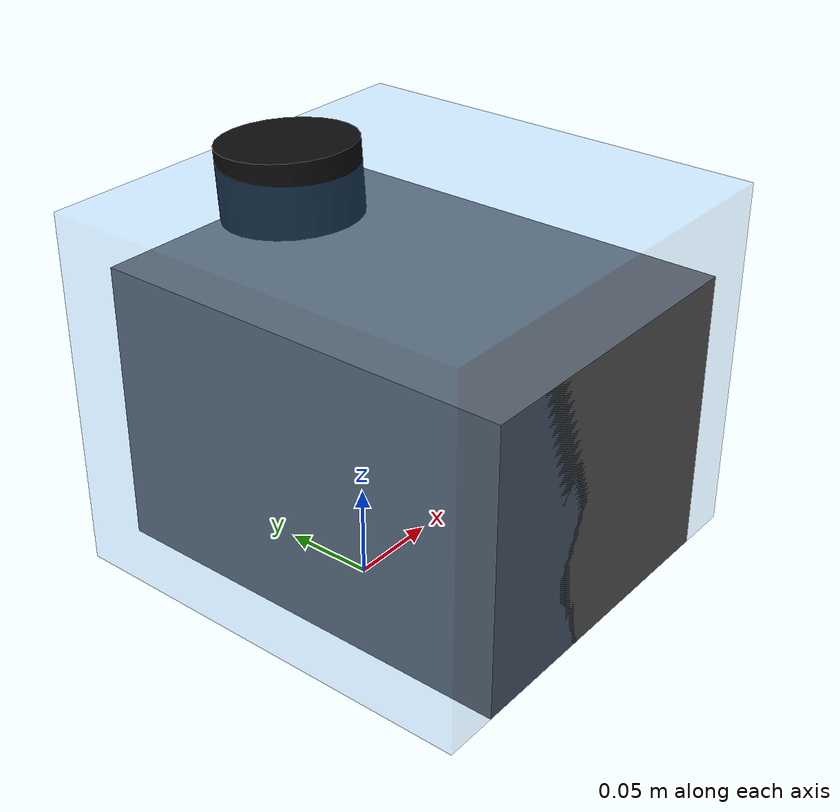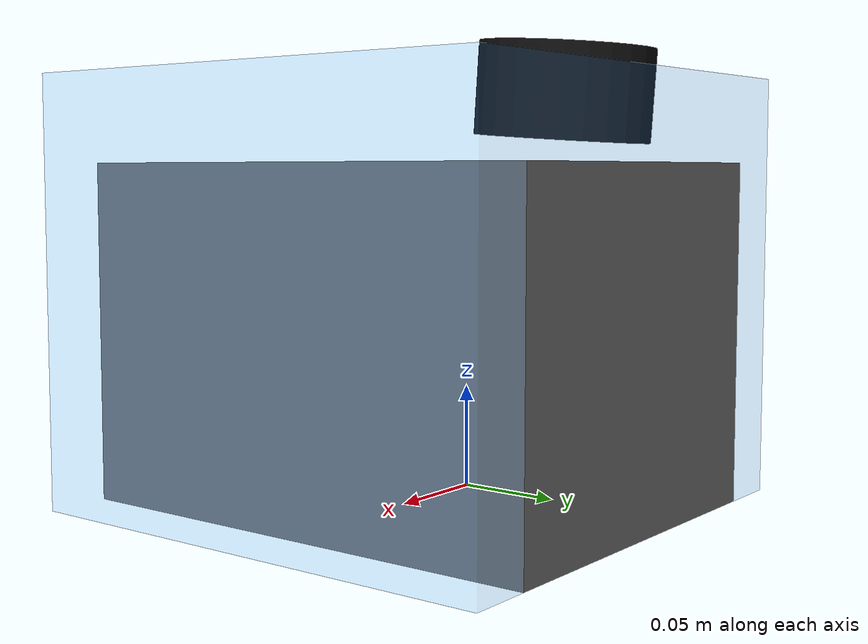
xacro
<?xml version="1.0"?>
<robot name="example_robot" xmlns:xacro="http://www.ros.org/wiki/xacro">

<link name="base_link">
    <visual name="base">
      <origin xyz="0.04 0 0.08" rpy="0 0 0"/>
      <geometry>
        <box size="0.18 0.24 0.16"/>
      </geometry>
      <material name="grey">
        <color rgba="0.4 0.4 0.4 1.0"/>
      </material>
    </visual>
    <visual name="bounding_cube">
      <origin xyz="0.04 0 0.10" rpy="0 0 0"/>
      <geometry>
        <box size="0.24 0.24 0.20"/>
      </geometry>
      <material name="ghost_cube">
        <color rgba="0.2 0.6 1.0 0.12"/>
      </material>
    </visual>
    <collision>
      <origin xyz="0.04 0 0.08" rpy="0 0 0"/>
      <geometry>
        <box size="0.18 0.24 0.16"/>
      </geometry>
    </collision>
  </link>

  <link name="lidar_link">
    <visual>
      <geometry>
        <cylinder radius="0.038" length="0.04"/>
      </geometry>
      <material name="black">
        <color rgba="0.05 0.05 0.05 1.0"/>
      </material>
    </visual>
    <collision>
      <geometry>
        <cylinder radius="0.038" length="0.04"/>
      </geometry>
    </collision>
  </link>

  <joint name="base_link_to_lidar_link" type="fixed">
    <parent link="base_link"/>
    <child link="lidar_link"/>
    <origin xyz="0.04 0.08 0.19" rpy="-0.0698132 0 0"/>
  </joint>

  </robot>
